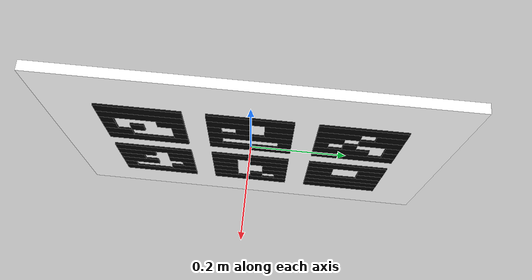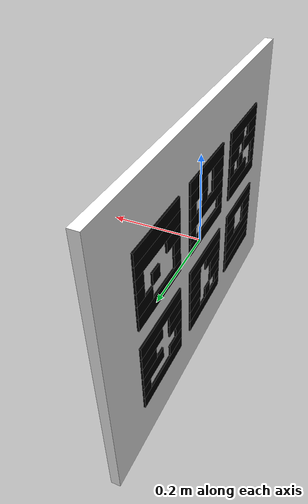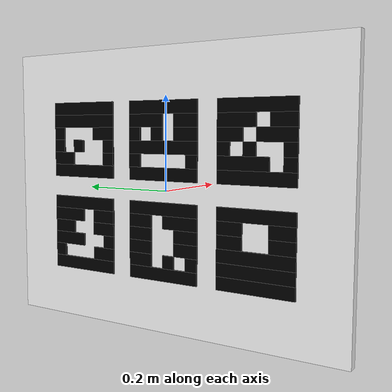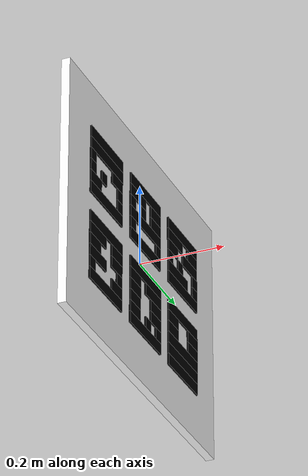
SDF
<?xml version="1.0"?>
<sdf version="1.8">
  <model name="aruco_station_R3_ids_12_17">
    <static>true</static>
    <link name="target_link">

      <visual name="white_board_base">
        <cast_shadows>false</cast_shadows>
        <pose>0.00000000 0.00000000 0.00000000 0.00000000 0.00000000 0.00000000</pose>
        <geometry>
          <box>
            <size>0.02000000 0.80000000 0.60000000</size>
          </box>
        </geometry>
        <material>
          <ambient>1 1 1 1</ambient>
          <diffuse>1 1 1 1</diffuse>
          <specular>0 0 0 1</specular>
          <emissive>1 1 1 1</emissive>
        </material>
      </visual>

      <visual name="black_cell_front_plus_x_id12_r0_c0_6">
        <cast_shadows>false</cast_shadows>
        <pose>0.01300000 -0.21111111 0.17500000 0.00000000 0.00000000 0.00000000</pose>
        <geometry>
          <box>
            <size>0.00400000 0.16666667 0.02777778</size>
          </box>
        </geometry>
        <material>
          <ambient>0 0 0 1</ambient>
          <diffuse>0 0 0 1</diffuse>
          <specular>0 0 0 1</specular>
          <emissive>0 0 0 1</emissive>
        </material>
      </visual>

      <visual name="black_cell_front_plus_x_id12_r1_c0_6">
        <cast_shadows>false</cast_shadows>
        <pose>0.01300000 -0.21111111 0.14722222 0.00000000 0.00000000 0.00000000</pose>
        <geometry>
          <box>
            <size>0.00400000 0.16666667 0.02777778</size>
          </box>
        </geometry>
        <material>
          <ambient>0 0 0 1</ambient>
          <diffuse>0 0 0 1</diffuse>
          <specular>0 0 0 1</specular>
          <emissive>0 0 0 1</emissive>
        </material>
      </visual>

      <visual name="black_cell_front_plus_x_id12_r2_c0_1">
        <cast_shadows>false</cast_shadows>
        <pose>0.01300000 -0.28055556 0.11944444 0.00000000 0.00000000 0.00000000</pose>
        <geometry>
          <box>
            <size>0.00400000 0.02777778 0.02777778</size>
          </box>
        </geometry>
        <material>
          <ambient>0 0 0 1</ambient>
          <diffuse>0 0 0 1</diffuse>
          <specular>0 0 0 1</specular>
          <emissive>0 0 0 1</emissive>
        </material>
      </visual>

      <visual name="black_cell_front_plus_x_id12_r2_c4_6">
        <cast_shadows>false</cast_shadows>
        <pose>0.01300000 -0.15555556 0.11944444 0.00000000 0.00000000 0.00000000</pose>
        <geometry>
          <box>
            <size>0.00400000 0.05555556 0.02777778</size>
          </box>
        </geometry>
        <material>
          <ambient>0 0 0 1</ambient>
          <diffuse>0 0 0 1</diffuse>
          <specular>0 0 0 1</specular>
          <emissive>0 0 0 1</emissive>
        </material>
      </visual>

      <visual name="black_cell_front_plus_x_id12_r3_c0_1">
        <cast_shadows>false</cast_shadows>
        <pose>0.01300000 -0.28055556 0.09166667 0.00000000 0.00000000 0.00000000</pose>
        <geometry>
          <box>
            <size>0.00400000 0.02777778 0.02777778</size>
          </box>
        </geometry>
        <material>
          <ambient>0 0 0 1</ambient>
          <diffuse>0 0 0 1</diffuse>
          <specular>0 0 0 1</specular>
          <emissive>0 0 0 1</emissive>
        </material>
      </visual>

      <visual name="black_cell_front_plus_x_id12_r3_c2_3">
        <cast_shadows>false</cast_shadows>
        <pose>0.01300000 -0.22500000 0.09166667 0.00000000 0.00000000 0.00000000</pose>
        <geometry>
          <box>
            <size>0.00400000 0.02777778 0.02777778</size>
          </box>
        </geometry>
        <material>
          <ambient>0 0 0 1</ambient>
          <diffuse>0 0 0 1</diffuse>
          <specular>0 0 0 1</specular>
          <emissive>0 0 0 1</emissive>
        </material>
      </visual>

      <visual name="black_cell_front_plus_x_id12_r3_c5_6">
        <cast_shadows>false</cast_shadows>
        <pose>0.01300000 -0.14166667 0.09166667 0.00000000 0.00000000 0.00000000</pose>
        <geometry>
          <box>
            <size>0.00400000 0.02777778 0.02777778</size>
          </box>
        </geometry>
        <material>
          <ambient>0 0 0 1</ambient>
          <diffuse>0 0 0 1</diffuse>
          <specular>0 0 0 1</specular>
          <emissive>0 0 0 1</emissive>
        </material>
      </visual>

      <visual name="black_cell_front_plus_x_id12_r4_c0_2">
        <cast_shadows>false</cast_shadows>
        <pose>0.01300000 -0.26666667 0.06388889 0.00000000 0.00000000 0.00000000</pose>
        <geometry>
          <box>
            <size>0.00400000 0.05555556 0.02777778</size>
          </box>
        </geometry>
        <material>
          <ambient>0 0 0 1</ambient>
          <diffuse>0 0 0 1</diffuse>
          <specular>0 0 0 1</specular>
          <emissive>0 0 0 1</emissive>
        </material>
      </visual>

      <visual name="black_cell_front_plus_x_id12_r4_c5_6">
        <cast_shadows>false</cast_shadows>
        <pose>0.01300000 -0.14166667 0.06388889 0.00000000 0.00000000 0.00000000</pose>
        <geometry>
          <box>
            <size>0.00400000 0.02777778 0.02777778</size>
          </box>
        </geometry>
        <material>
          <ambient>0 0 0 1</ambient>
          <diffuse>0 0 0 1</diffuse>
          <specular>0 0 0 1</specular>
          <emissive>0 0 0 1</emissive>
        </material>
      </visual>

      <visual name="black_cell_front_plus_x_id12_r5_c0_6">
        <cast_shadows>false</cast_shadows>
        <pose>0.01300000 -0.21111111 0.03611111 0.00000000 0.00000000 0.00000000</pose>
        <geometry>
          <box>
            <size>0.00400000 0.16666667 0.02777778</size>
          </box>
        </geometry>
        <material>
          <ambient>0 0 0 1</ambient>
          <diffuse>0 0 0 1</diffuse>
          <specular>0 0 0 1</specular>
          <emissive>0 0 0 1</emissive>
        </material>
      </visual>

      <visual name="black_cell_back_minus_x_id12_r0_c0_6">
        <cast_shadows>false</cast_shadows>
        <pose>-0.01300000 0.21111111 0.17500000 0.00000000 0.00000000 0.00000000</pose>
        <geometry>
          <box>
            <size>0.00400000 0.16666667 0.02777778</size>
          </box>
        </geometry>
        <material>
          <ambient>0 0 0 1</ambient>
          <diffuse>0 0 0 1</diffuse>
          <specular>0 0 0 1</specular>
          <emissive>0 0 0 1</emissive>
        </material>
      </visual>

      <visual name="black_cell_back_minus_x_id12_r1_c0_6">
        <cast_shadows>false</cast_shadows>
        <pose>-0.01300000 0.21111111 0.14722222 0.00000000 0.00000000 0.00000000</pose>
        <geometry>
          <box>
            <size>0.00400000 0.16666667 0.02777778</size>
          </box>
        </geometry>
        <material>
          <ambient>0 0 0 1</ambient>
          <diffuse>0 0 0 1</diffuse>
          <specular>0 0 0 1</specular>
          <emissive>0 0 0 1</emissive>
        </material>
      </visual>

      <visual name="black_cell_back_minus_x_id12_r2_c0_1">
        <cast_shadows>false</cast_shadows>
        <pose>-0.01300000 0.28055556 0.11944444 0.00000000 0.00000000 0.00000000</pose>
        <geometry>
          <box>
            <size>0.00400000 0.02777778 0.02777778</size>
          </box>
        </geometry>
        <material>
          <ambient>0 0 0 1</ambient>
          <diffuse>0 0 0 1</diffuse>
          <specular>0 0 0 1</specular>
          <emissive>0 0 0 1</emissive>
        </material>
      </visual>

      <visual name="black_cell_back_minus_x_id12_r2_c4_6">
        <cast_shadows>false</cast_shadows>
        <pose>-0.01300000 0.15555556 0.11944444 0.00000000 0.00000000 0.00000000</pose>
        <geometry>
          <box>
            <size>0.00400000 0.05555556 0.02777778</size>
          </box>
        </geometry>
        <material>
          <ambient>0 0 0 1</ambient>
          <diffuse>0 0 0 1</diffuse>
          <specular>0 0 0 1</specular>
          <emissive>0 0 0 1</emissive>
        </material>
      </visual>

      <visual name="black_cell_back_minus_x_id12_r3_c0_1">
        <cast_shadows>false</cast_shadows>
        <pose>-0.01300000 0.28055556 0.09166667 0.00000000 0.00000000 0.00000000</pose>
        <geometry>
          <box>
            <size>0.00400000 0.02777778 0.02777778</size>
          </box>
        </geometry>
        <material>
          <ambient>0 0 0 1</ambient>
          <diffuse>0 0 0 1</diffuse>
          <specular>0 0 0 1</specular>
          <emissive>0 0 0 1</emissive>
        </material>
      </visual>

      <visual name="black_cell_back_minus_x_id12_r3_c2_3">
        <cast_shadows>false</cast_shadows>
        <pose>-0.01300000 0.22500000 0.09166667 0.00000000 0.00000000 0.00000000</pose>
        <geometry>
          <box>
            <size>0.00400000 0.02777778 0.02777778</size>
          </box>
        </geometry>
        <material>
          <ambient>0 0 0 1</ambient>
          <diffuse>0 0 0 1</diffuse>
          <specular>0 0 0 1</specular>
          <emissive>0 0 0 1</emissive>
        </material>
      </visual>

      <visual name="black_cell_back_minus_x_id12_r3_c5_6">
        <cast_shadows>false</cast_shadows>
        <pose>-0.01300000 0.14166667 0.09166667 0.00000000 0.00000000 0.00000000</pose>
        <geometry>
          <box>
            <size>0.00400000 0.02777778 0.02777778</size>
          </box>
        </geometry>
        <material>
          <ambient>0 0 0 1</ambient>
          <diffuse>0 0 0 1</diffuse>
          <specular>0 0 0 1</specular>
          <emissive>0 0 0 1</emissive>
        </material>
      </visual>

      <visual name="black_cell_back_minus_x_id12_r4_c0_2">
        <cast_shadows>false</cast_shadows>
        <pose>-0.01300000 0.26666667 0.06388889 0.00000000 0.00000000 0.00000000</pose>
        <geometry>
          <box>
            <size>0.00400000 0.05555556 0.02777778</size>
          </box>
        </geometry>
        <material>
          <ambient>0 0 0 1</ambient>
          <diffuse>0 0 0 1</diffuse>
          <specular>0 0 0 1</specular>
          <emissive>0 0 0 1</emissive>
        </material>
      </visual>

      <visual name="black_cell_back_minus_x_id12_r4_c5_6">
        <cast_shadows>false</cast_shadows>
        <pose>-0.01300000 0.14166667 0.06388889 0.00000000 0.00000000 0.00000000</pose>
        <geometry>
          <box>
            <size>0.00400000 0.02777778 0.02777778</size>
          </box>
        </geometry>
        <material>
          <ambient>0 0 0 1</ambient>
          <diffuse>0 0 0 1</diffuse>
          <specular>0 0 0 1</specular>
          <emissive>0 0 0 1</emissive>
        </material>
      </visual>

      <visual name="black_cell_back_minus_x_id12_r5_c0_6">
        <cast_shadows>false</cast_shadows>
        <pose>-0.01300000 0.21111111 0.03611111 0.00000000 0.00000000 0.00000000</pose>
        <geometry>
          <box>
            <size>0.00400000 0.16666667 0.02777778</size>
          </box>
        </geometry>
        <material>
          <ambient>0 0 0 1</ambient>
          <diffuse>0 0 0 1</diffuse>
          <specular>0 0 0 1</specular>
          <emissive>0 0 0 1</emissive>
        </material>
      </visual>

      <visual name="black_cell_front_plus_x_id13_r0_c0_6">
        <cast_shadows>false</cast_shadows>
        <pose>0.01300000 -0.00000000 0.17500000 0.00000000 0.00000000 0.00000000</pose>
        <geometry>
          <box>
            <size>0.00400000 0.16666667 0.02777778</size>
          </box>
        </geometry>
        <material>
          <ambient>0 0 0 1</ambient>
          <diffuse>0 0 0 1</diffuse>
          <specular>0 0 0 1</specular>
          <emissive>0 0 0 1</emissive>
        </material>
      </visual>

      <visual name="black_cell_front_plus_x_id13_r1_c0_3">
        <cast_shadows>false</cast_shadows>
        <pose>0.01300000 -0.04166667 0.14722222 0.00000000 0.00000000 0.00000000</pose>
        <geometry>
          <box>
            <size>0.00400000 0.08333333 0.02777778</size>
          </box>
        </geometry>
        <material>
          <ambient>0 0 0 1</ambient>
          <diffuse>0 0 0 1</diffuse>
          <specular>0 0 0 1</specular>
          <emissive>0 0 0 1</emissive>
        </material>
      </visual>

      <visual name="black_cell_front_plus_x_id13_r1_c4_6">
        <cast_shadows>false</cast_shadows>
        <pose>0.01300000 0.05555556 0.14722222 0.00000000 0.00000000 0.00000000</pose>
        <geometry>
          <box>
            <size>0.00400000 0.05555556 0.02777778</size>
          </box>
        </geometry>
        <material>
          <ambient>0 0 0 1</ambient>
          <diffuse>0 0 0 1</diffuse>
          <specular>0 0 0 1</specular>
          <emissive>0 0 0 1</emissive>
        </material>
      </visual>

      <visual name="black_cell_front_plus_x_id13_r2_c0_1">
        <cast_shadows>false</cast_shadows>
        <pose>0.01300000 -0.06944444 0.11944444 0.00000000 0.00000000 0.00000000</pose>
        <geometry>
          <box>
            <size>0.00400000 0.02777778 0.02777778</size>
          </box>
        </geometry>
        <material>
          <ambient>0 0 0 1</ambient>
          <diffuse>0 0 0 1</diffuse>
          <specular>0 0 0 1</specular>
          <emissive>0 0 0 1</emissive>
        </material>
      </visual>

      <visual name="black_cell_front_plus_x_id13_r2_c2_3">
        <cast_shadows>false</cast_shadows>
        <pose>0.01300000 -0.01388889 0.11944444 0.00000000 0.00000000 0.00000000</pose>
        <geometry>
          <box>
            <size>0.00400000 0.02777778 0.02777778</size>
          </box>
        </geometry>
        <material>
          <ambient>0 0 0 1</ambient>
          <diffuse>0 0 0 1</diffuse>
          <specular>0 0 0 1</specular>
          <emissive>0 0 0 1</emissive>
        </material>
      </visual>

      <visual name="black_cell_front_plus_x_id13_r2_c4_6">
        <cast_shadows>false</cast_shadows>
        <pose>0.01300000 0.05555556 0.11944444 0.00000000 0.00000000 0.00000000</pose>
        <geometry>
          <box>
            <size>0.00400000 0.05555556 0.02777778</size>
          </box>
        </geometry>
        <material>
          <ambient>0 0 0 1</ambient>
          <diffuse>0 0 0 1</diffuse>
          <specular>0 0 0 1</specular>
          <emissive>0 0 0 1</emissive>
        </material>
      </visual>

      <visual name="black_cell_front_plus_x_id13_r3_c0_6">
        <cast_shadows>false</cast_shadows>
        <pose>0.01300000 -0.00000000 0.09166667 0.00000000 0.00000000 0.00000000</pose>
        <geometry>
          <box>
            <size>0.00400000 0.16666667 0.02777778</size>
          </box>
        </geometry>
        <material>
          <ambient>0 0 0 1</ambient>
          <diffuse>0 0 0 1</diffuse>
          <specular>0 0 0 1</specular>
          <emissive>0 0 0 1</emissive>
        </material>
      </visual>

      <visual name="black_cell_front_plus_x_id13_r4_c0_1">
        <cast_shadows>false</cast_shadows>
        <pose>0.01300000 -0.06944444 0.06388889 0.00000000 0.00000000 0.00000000</pose>
        <geometry>
          <box>
            <size>0.00400000 0.02777778 0.02777778</size>
          </box>
        </geometry>
        <material>
          <ambient>0 0 0 1</ambient>
          <diffuse>0 0 0 1</diffuse>
          <specular>0 0 0 1</specular>
          <emissive>0 0 0 1</emissive>
        </material>
      </visual>

      <visual name="black_cell_front_plus_x_id13_r4_c5_6">
        <cast_shadows>false</cast_shadows>
        <pose>0.01300000 0.06944444 0.06388889 0.00000000 0.00000000 0.00000000</pose>
        <geometry>
          <box>
            <size>0.00400000 0.02777778 0.02777778</size>
          </box>
        </geometry>
        <material>
          <ambient>0 0 0 1</ambient>
          <diffuse>0 0 0 1</diffuse>
          <specular>0 0 0 1</specular>
          <emissive>0 0 0 1</emissive>
        </material>
      </visual>

      <visual name="black_cell_front_plus_x_id13_r5_c0_6">
        <cast_shadows>false</cast_shadows>
        <pose>0.01300000 -0.00000000 0.03611111 0.00000000 0.00000000 0.00000000</pose>
        <geometry>
          <box>
            <size>0.00400000 0.16666667 0.02777778</size>
          </box>
        </geometry>
        <material>
          <ambient>0 0 0 1</ambient>
          <diffuse>0 0 0 1</diffuse>
          <specular>0 0 0 1</specular>
          <emissive>0 0 0 1</emissive>
        </material>
      </visual>

      <visual name="black_cell_back_minus_x_id13_r0_c0_6">
        <cast_shadows>false</cast_shadows>
        <pose>-0.01300000 0.00000000 0.17500000 0.00000000 0.00000000 0.00000000</pose>
        <geometry>
          <box>
            <size>0.00400000 0.16666667 0.02777778</size>
          </box>
        </geometry>
        <material>
          <ambient>0 0 0 1</ambient>
          <diffuse>0 0 0 1</diffuse>
          <specular>0 0 0 1</specular>
          <emissive>0 0 0 1</emissive>
        </material>
      </visual>

      <visual name="black_cell_back_minus_x_id13_r1_c0_3">
        <cast_shadows>false</cast_shadows>
        <pose>-0.01300000 0.04166667 0.14722222 0.00000000 0.00000000 0.00000000</pose>
        <geometry>
          <box>
            <size>0.00400000 0.08333333 0.02777778</size>
          </box>
        </geometry>
        <material>
          <ambient>0 0 0 1</ambient>
          <diffuse>0 0 0 1</diffuse>
          <specular>0 0 0 1</specular>
          <emissive>0 0 0 1</emissive>
        </material>
      </visual>

      <visual name="black_cell_back_minus_x_id13_r1_c4_6">
        <cast_shadows>false</cast_shadows>
        <pose>-0.01300000 -0.05555556 0.14722222 0.00000000 0.00000000 0.00000000</pose>
        <geometry>
          <box>
            <size>0.00400000 0.05555556 0.02777778</size>
          </box>
        </geometry>
        <material>
          <ambient>0 0 0 1</ambient>
          <diffuse>0 0 0 1</diffuse>
          <specular>0 0 0 1</specular>
          <emissive>0 0 0 1</emissive>
        </material>
      </visual>

      <visual name="black_cell_back_minus_x_id13_r2_c0_1">
        <cast_shadows>false</cast_shadows>
        <pose>-0.01300000 0.06944444 0.11944444 0.00000000 0.00000000 0.00000000</pose>
        <geometry>
          <box>
            <size>0.00400000 0.02777778 0.02777778</size>
          </box>
        </geometry>
        <material>
          <ambient>0 0 0 1</ambient>
          <diffuse>0 0 0 1</diffuse>
          <specular>0 0 0 1</specular>
          <emissive>0 0 0 1</emissive>
        </material>
      </visual>

      <visual name="black_cell_back_minus_x_id13_r2_c2_3">
        <cast_shadows>false</cast_shadows>
        <pose>-0.01300000 0.01388889 0.11944444 0.00000000 0.00000000 0.00000000</pose>
        <geometry>
          <box>
            <size>0.00400000 0.02777778 0.02777778</size>
          </box>
        </geometry>
        <material>
          <ambient>0 0 0 1</ambient>
          <diffuse>0 0 0 1</diffuse>
          <specular>0 0 0 1</specular>
          <emissive>0 0 0 1</emissive>
        </material>
      </visual>

      <visual name="black_cell_back_minus_x_id13_r2_c4_6">
        <cast_shadows>false</cast_shadows>
        <pose>-0.01300000 -0.05555556 0.11944444 0.00000000 0.00000000 0.00000000</pose>
        <geometry>
          <box>
            <size>0.00400000 0.05555556 0.02777778</size>
          </box>
        </geometry>
        <material>
          <ambient>0 0 0 1</ambient>
          <diffuse>0 0 0 1</diffuse>
          <specular>0 0 0 1</specular>
          <emissive>0 0 0 1</emissive>
        </material>
      </visual>

      <visual name="black_cell_back_minus_x_id13_r3_c0_6">
        <cast_shadows>false</cast_shadows>
        <pose>-0.01300000 0.00000000 0.09166667 0.00000000 0.00000000 0.00000000</pose>
        <geometry>
          <box>
            <size>0.00400000 0.16666667 0.02777778</size>
          </box>
        </geometry>
        <material>
          <ambient>0 0 0 1</ambient>
          <diffuse>0 0 0 1</diffuse>
          <specular>0 0 0 1</specular>
          <emissive>0 0 0 1</emissive>
        </material>
      </visual>

      <visual name="black_cell_back_minus_x_id13_r4_c0_1">
        <cast_shadows>false</cast_shadows>
        <pose>-0.01300000 0.06944444 0.06388889 0.00000000 0.00000000 0.00000000</pose>
        <geometry>
          <box>
            <size>0.00400000 0.02777778 0.02777778</size>
          </box>
        </geometry>
        <material>
          <ambient>0 0 0 1</ambient>
          <diffuse>0 0 0 1</diffuse>
          <specular>0 0 0 1</specular>
          <emissive>0 0 0 1</emissive>
        </material>
      </visual>

      <visual name="black_cell_back_minus_x_id13_r4_c5_6">
        <cast_shadows>false</cast_shadows>
        <pose>-0.01300000 -0.06944444 0.06388889 0.00000000 0.00000000 0.00000000</pose>
        <geometry>
          <box>
            <size>0.00400000 0.02777778 0.02777778</size>
          </box>
        </geometry>
        <material>
          <ambient>0 0 0 1</ambient>
          <diffuse>0 0 0 1</diffuse>
          <specular>0 0 0 1</specular>
          <emissive>0 0 0 1</emissive>
        </material>
      </visual>

      <visual name="black_cell_back_minus_x_id13_r5_c0_6">
        <cast_shadows>false</cast_shadows>
        <pose>-0.01300000 0.00000000 0.03611111 0.00000000 0.00000000 0.00000000</pose>
        <geometry>
          <box>
            <size>0.00400000 0.16666667 0.02777778</size>
          </box>
        </geometry>
        <material>
          <ambient>0 0 0 1</ambient>
          <diffuse>0 0 0 1</diffuse>
          <specular>0 0 0 1</specular>
          <emissive>0 0 0 1</emissive>
        </material>
      </visual>

      <visual name="black_cell_front_plus_x_id14_r0_c0_6">
        <cast_shadows>false</cast_shadows>
        <pose>0.01300000 0.21111111 0.17500000 0.00000000 0.00000000 0.00000000</pose>
        <geometry>
          <box>
            <size>0.00400000 0.16666667 0.02777778</size>
          </box>
        </geometry>
        <material>
          <ambient>0 0 0 1</ambient>
          <diffuse>0 0 0 1</diffuse>
          <specular>0 0 0 1</specular>
          <emissive>0 0 0 1</emissive>
        </material>
      </visual>

      <visual name="black_cell_front_plus_x_id14_r1_c0_3">
        <cast_shadows>false</cast_shadows>
        <pose>0.01300000 0.16944444 0.14722222 0.00000000 0.00000000 0.00000000</pose>
        <geometry>
          <box>
            <size>0.00400000 0.08333333 0.02777778</size>
          </box>
        </geometry>
        <material>
          <ambient>0 0 0 1</ambient>
          <diffuse>0 0 0 1</diffuse>
          <specular>0 0 0 1</specular>
          <emissive>0 0 0 1</emissive>
        </material>
      </visual>

      <visual name="black_cell_front_plus_x_id14_r1_c4_6">
        <cast_shadows>false</cast_shadows>
        <pose>0.01300000 0.26666667 0.14722222 0.00000000 0.00000000 0.00000000</pose>
        <geometry>
          <box>
            <size>0.00400000 0.05555556 0.02777778</size>
          </box>
        </geometry>
        <material>
          <ambient>0 0 0 1</ambient>
          <diffuse>0 0 0 1</diffuse>
          <specular>0 0 0 1</specular>
          <emissive>0 0 0 1</emissive>
        </material>
      </visual>

      <visual name="black_cell_front_plus_x_id14_r2_c0_2">
        <cast_shadows>false</cast_shadows>
        <pose>0.01300000 0.15555556 0.11944444 0.00000000 0.00000000 0.00000000</pose>
        <geometry>
          <box>
            <size>0.00400000 0.05555556 0.02777778</size>
          </box>
        </geometry>
        <material>
          <ambient>0 0 0 1</ambient>
          <diffuse>0 0 0 1</diffuse>
          <specular>0 0 0 1</specular>
          <emissive>0 0 0 1</emissive>
        </material>
      </visual>

      <visual name="black_cell_front_plus_x_id14_r2_c3_6">
        <cast_shadows>false</cast_shadows>
        <pose>0.01300000 0.25277778 0.11944444 0.00000000 0.00000000 0.00000000</pose>
        <geometry>
          <box>
            <size>0.00400000 0.08333333 0.02777778</size>
          </box>
        </geometry>
        <material>
          <ambient>0 0 0 1</ambient>
          <diffuse>0 0 0 1</diffuse>
          <specular>0 0 0 1</specular>
          <emissive>0 0 0 1</emissive>
        </material>
      </visual>

      <visual name="black_cell_front_plus_x_id14_r3_c0_1">
        <cast_shadows>false</cast_shadows>
        <pose>0.01300000 0.14166667 0.09166667 0.00000000 0.00000000 0.00000000</pose>
        <geometry>
          <box>
            <size>0.00400000 0.02777778 0.02777778</size>
          </box>
        </geometry>
        <material>
          <ambient>0 0 0 1</ambient>
          <diffuse>0 0 0 1</diffuse>
          <specular>0 0 0 1</specular>
          <emissive>0 0 0 1</emissive>
        </material>
      </visual>

      <visual name="black_cell_front_plus_x_id14_r3_c2_3">
        <cast_shadows>false</cast_shadows>
        <pose>0.01300000 0.19722222 0.09166667 0.00000000 0.00000000 0.00000000</pose>
        <geometry>
          <box>
            <size>0.00400000 0.02777778 0.02777778</size>
          </box>
        </geometry>
        <material>
          <ambient>0 0 0 1</ambient>
          <diffuse>0 0 0 1</diffuse>
          <specular>0 0 0 1</specular>
          <emissive>0 0 0 1</emissive>
        </material>
      </visual>

      <visual name="black_cell_front_plus_x_id14_r3_c5_6">
        <cast_shadows>false</cast_shadows>
        <pose>0.01300000 0.28055556 0.09166667 0.00000000 0.00000000 0.00000000</pose>
        <geometry>
          <box>
            <size>0.00400000 0.02777778 0.02777778</size>
          </box>
        </geometry>
        <material>
          <ambient>0 0 0 1</ambient>
          <diffuse>0 0 0 1</diffuse>
          <specular>0 0 0 1</specular>
          <emissive>0 0 0 1</emissive>
        </material>
      </visual>

      <visual name="black_cell_front_plus_x_id14_r4_c0_4">
        <cast_shadows>false</cast_shadows>
        <pose>0.01300000 0.18333333 0.06388889 0.00000000 0.00000000 0.00000000</pose>
        <geometry>
          <box>
            <size>0.00400000 0.11111111 0.02777778</size>
          </box>
        </geometry>
        <material>
          <ambient>0 0 0 1</ambient>
          <diffuse>0 0 0 1</diffuse>
          <specular>0 0 0 1</specular>
          <emissive>0 0 0 1</emissive>
        </material>
      </visual>

      <visual name="black_cell_front_plus_x_id14_r4_c5_6">
        <cast_shadows>false</cast_shadows>
        <pose>0.01300000 0.28055556 0.06388889 0.00000000 0.00000000 0.00000000</pose>
        <geometry>
          <box>
            <size>0.00400000 0.02777778 0.02777778</size>
          </box>
        </geometry>
        <material>
          <ambient>0 0 0 1</ambient>
          <diffuse>0 0 0 1</diffuse>
          <specular>0 0 0 1</specular>
          <emissive>0 0 0 1</emissive>
        </material>
      </visual>

      <visual name="black_cell_front_plus_x_id14_r5_c0_6">
        <cast_shadows>false</cast_shadows>
        <pose>0.01300000 0.21111111 0.03611111 0.00000000 0.00000000 0.00000000</pose>
        <geometry>
          <box>
            <size>0.00400000 0.16666667 0.02777778</size>
          </box>
        </geometry>
        <material>
          <ambient>0 0 0 1</ambient>
          <diffuse>0 0 0 1</diffuse>
          <specular>0 0 0 1</specular>
          <emissive>0 0 0 1</emissive>
        </material>
      </visual>

      <visual name="black_cell_back_minus_x_id14_r0_c0_6">
        <cast_shadows>false</cast_shadows>
        <pose>-0.01300000 -0.21111111 0.17500000 0.00000000 0.00000000 0.00000000</pose>
        <geometry>
          <box>
            <size>0.00400000 0.16666667 0.02777778</size>
          </box>
        </geometry>
        <material>
          <ambient>0 0 0 1</ambient>
          <diffuse>0 0 0 1</diffuse>
          <specular>0 0 0 1</specular>
          <emissive>0 0 0 1</emissive>
        </material>
      </visual>

      <visual name="black_cell_back_minus_x_id14_r1_c0_3">
        <cast_shadows>false</cast_shadows>
        <pose>-0.01300000 -0.16944444 0.14722222 0.00000000 0.00000000 0.00000000</pose>
        <geometry>
          <box>
            <size>0.00400000 0.08333333 0.02777778</size>
          </box>
        </geometry>
        <material>
          <ambient>0 0 0 1</ambient>
          <diffuse>0 0 0 1</diffuse>
          <specular>0 0 0 1</specular>
          <emissive>0 0 0 1</emissive>
        </material>
      </visual>

      <visual name="black_cell_back_minus_x_id14_r1_c4_6">
        <cast_shadows>false</cast_shadows>
        <pose>-0.01300000 -0.26666667 0.14722222 0.00000000 0.00000000 0.00000000</pose>
        <geometry>
          <box>
            <size>0.00400000 0.05555556 0.02777778</size>
          </box>
        </geometry>
        <material>
          <ambient>0 0 0 1</ambient>
          <diffuse>0 0 0 1</diffuse>
          <specular>0 0 0 1</specular>
          <emissive>0 0 0 1</emissive>
        </material>
      </visual>

      <visual name="black_cell_back_minus_x_id14_r2_c0_2">
        <cast_shadows>false</cast_shadows>
        <pose>-0.01300000 -0.15555556 0.11944444 0.00000000 0.00000000 0.00000000</pose>
        <geometry>
          <box>
            <size>0.00400000 0.05555556 0.02777778</size>
          </box>
        </geometry>
        <material>
          <ambient>0 0 0 1</ambient>
          <diffuse>0 0 0 1</diffuse>
          <specular>0 0 0 1</specular>
          <emissive>0 0 0 1</emissive>
        </material>
      </visual>

      <visual name="black_cell_back_minus_x_id14_r2_c3_6">
        <cast_shadows>false</cast_shadows>
        <pose>-0.01300000 -0.25277778 0.11944444 0.00000000 0.00000000 0.00000000</pose>
        <geometry>
          <box>
            <size>0.00400000 0.08333333 0.02777778</size>
          </box>
        </geometry>
        <material>
          <ambient>0 0 0 1</ambient>
          <diffuse>0 0 0 1</diffuse>
          <specular>0 0 0 1</specular>
          <emissive>0 0 0 1</emissive>
        </material>
      </visual>

      <visual name="black_cell_back_minus_x_id14_r3_c0_1">
        <cast_shadows>false</cast_shadows>
        <pose>-0.01300000 -0.14166667 0.09166667 0.00000000 0.00000000 0.00000000</pose>
        <geometry>
          <box>
            <size>0.00400000 0.02777778 0.02777778</size>
          </box>
        </geometry>
        <material>
          <ambient>0 0 0 1</ambient>
          <diffuse>0 0 0 1</diffuse>
          <specular>0 0 0 1</specular>
          <emissive>0 0 0 1</emissive>
        </material>
      </visual>

      <visual name="black_cell_back_minus_x_id14_r3_c2_3">
        <cast_shadows>false</cast_shadows>
        <pose>-0.01300000 -0.19722222 0.09166667 0.00000000 0.00000000 0.00000000</pose>
        <geometry>
          <box>
            <size>0.00400000 0.02777778 0.02777778</size>
          </box>
        </geometry>
        <material>
          <ambient>0 0 0 1</ambient>
          <diffuse>0 0 0 1</diffuse>
          <specular>0 0 0 1</specular>
          <emissive>0 0 0 1</emissive>
        </material>
      </visual>

      <visual name="black_cell_back_minus_x_id14_r3_c5_6">
        <cast_shadows>false</cast_shadows>
        <pose>-0.01300000 -0.28055556 0.09166667 0.00000000 0.00000000 0.00000000</pose>
        <geometry>
          <box>
            <size>0.00400000 0.02777778 0.02777778</size>
          </box>
        </geometry>
        <material>
          <ambient>0 0 0 1</ambient>
          <diffuse>0 0 0 1</diffuse>
          <specular>0 0 0 1</specular>
          <emissive>0 0 0 1</emissive>
        </material>
      </visual>

      <visual name="black_cell_back_minus_x_id14_r4_c0_4">
        <cast_shadows>false</cast_shadows>
        <pose>-0.01300000 -0.18333333 0.06388889 0.00000000 0.00000000 0.00000000</pose>
        <geometry>
          <box>
            <size>0.00400000 0.11111111 0.02777778</size>
          </box>
        </geometry>
        <material>
          <ambient>0 0 0 1</ambient>
          <diffuse>0 0 0 1</diffuse>
          <specular>0 0 0 1</specular>
          <emissive>0 0 0 1</emissive>
        </material>
      </visual>

      <visual name="black_cell_back_minus_x_id14_r4_c5_6">
        <cast_shadows>false</cast_shadows>
        <pose>-0.01300000 -0.28055556 0.06388889 0.00000000 0.00000000 0.00000000</pose>
        <geometry>
          <box>
            <size>0.00400000 0.02777778 0.02777778</size>
          </box>
        </geometry>
        <material>
          <ambient>0 0 0 1</ambient>
          <diffuse>0 0 0 1</diffuse>
          <specular>0 0 0 1</specular>
          <emissive>0 0 0 1</emissive>
        </material>
      </visual>

      <visual name="black_cell_back_minus_x_id14_r5_c0_6">
        <cast_shadows>false</cast_shadows>
        <pose>-0.01300000 -0.21111111 0.03611111 0.00000000 0.00000000 0.00000000</pose>
        <geometry>
          <box>
            <size>0.00400000 0.16666667 0.02777778</size>
          </box>
        </geometry>
        <material>
          <ambient>0 0 0 1</ambient>
          <diffuse>0 0 0 1</diffuse>
          <specular>0 0 0 1</specular>
          <emissive>0 0 0 1</emissive>
        </material>
      </visual>

      <visual name="black_cell_front_plus_x_id15_r0_c0_6">
        <cast_shadows>false</cast_shadows>
        <pose>0.01300000 -0.21111111 -0.03611111 0.00000000 0.00000000 0.00000000</pose>
        <geometry>
          <box>
            <size>0.00400000 0.16666667 0.02777778</size>
          </box>
        </geometry>
        <material>
          <ambient>0 0 0 1</ambient>
          <diffuse>0 0 0 1</diffuse>
          <specular>0 0 0 1</specular>
          <emissive>0 0 0 1</emissive>
        </material>
      </visual>

      <visual name="black_cell_front_plus_x_id15_r1_c0_3">
        <cast_shadows>false</cast_shadows>
        <pose>0.01300000 -0.25277778 -0.06388889 0.00000000 0.00000000 0.00000000</pose>
        <geometry>
          <box>
            <size>0.00400000 0.08333333 0.02777778</size>
          </box>
        </geometry>
        <material>
          <ambient>0 0 0 1</ambient>
          <diffuse>0 0 0 1</diffuse>
          <specular>0 0 0 1</specular>
          <emissive>0 0 0 1</emissive>
        </material>
      </visual>

      <visual name="black_cell_front_plus_x_id15_r1_c4_6">
        <cast_shadows>false</cast_shadows>
        <pose>0.01300000 -0.15555556 -0.06388889 0.00000000 0.00000000 0.00000000</pose>
        <geometry>
          <box>
            <size>0.00400000 0.05555556 0.02777778</size>
          </box>
        </geometry>
        <material>
          <ambient>0 0 0 1</ambient>
          <diffuse>0 0 0 1</diffuse>
          <specular>0 0 0 1</specular>
          <emissive>0 0 0 1</emissive>
        </material>
      </visual>

      <visual name="black_cell_front_plus_x_id15_r2_c0_2">
        <cast_shadows>false</cast_shadows>
        <pose>0.01300000 -0.26666667 -0.09166667 0.00000000 0.00000000 0.00000000</pose>
        <geometry>
          <box>
            <size>0.00400000 0.05555556 0.02777778</size>
          </box>
        </geometry>
        <material>
          <ambient>0 0 0 1</ambient>
          <diffuse>0 0 0 1</diffuse>
          <specular>0 0 0 1</specular>
          <emissive>0 0 0 1</emissive>
        </material>
      </visual>

      <visual name="black_cell_front_plus_x_id15_r2_c4_6">
        <cast_shadows>false</cast_shadows>
        <pose>0.01300000 -0.15555556 -0.09166667 0.00000000 0.00000000 0.00000000</pose>
        <geometry>
          <box>
            <size>0.00400000 0.05555556 0.02777778</size>
          </box>
        </geometry>
        <material>
          <ambient>0 0 0 1</ambient>
          <diffuse>0 0 0 1</diffuse>
          <specular>0 0 0 1</specular>
          <emissive>0 0 0 1</emissive>
        </material>
      </visual>

      <visual name="black_cell_front_plus_x_id15_r3_c0_3">
        <cast_shadows>false</cast_shadows>
        <pose>0.01300000 -0.25277778 -0.11944444 0.00000000 0.00000000 0.00000000</pose>
        <geometry>
          <box>
            <size>0.00400000 0.08333333 0.02777778</size>
          </box>
        </geometry>
        <material>
          <ambient>0 0 0 1</ambient>
          <diffuse>0 0 0 1</diffuse>
          <specular>0 0 0 1</specular>
          <emissive>0 0 0 1</emissive>
        </material>
      </visual>

      <visual name="black_cell_front_plus_x_id15_r3_c5_6">
        <cast_shadows>false</cast_shadows>
        <pose>0.01300000 -0.14166667 -0.11944444 0.00000000 0.00000000 0.00000000</pose>
        <geometry>
          <box>
            <size>0.00400000 0.02777778 0.02777778</size>
          </box>
        </geometry>
        <material>
          <ambient>0 0 0 1</ambient>
          <diffuse>0 0 0 1</diffuse>
          <specular>0 0 0 1</specular>
          <emissive>0 0 0 1</emissive>
        </material>
      </visual>

      <visual name="black_cell_front_plus_x_id15_r4_c0_1">
        <cast_shadows>false</cast_shadows>
        <pose>0.01300000 -0.28055556 -0.14722222 0.00000000 0.00000000 0.00000000</pose>
        <geometry>
          <box>
            <size>0.00400000 0.02777778 0.02777778</size>
          </box>
        </geometry>
        <material>
          <ambient>0 0 0 1</ambient>
          <diffuse>0 0 0 1</diffuse>
          <specular>0 0 0 1</specular>
          <emissive>0 0 0 1</emissive>
        </material>
      </visual>

      <visual name="black_cell_front_plus_x_id15_r4_c4_6">
        <cast_shadows>false</cast_shadows>
        <pose>0.01300000 -0.15555556 -0.14722222 0.00000000 0.00000000 0.00000000</pose>
        <geometry>
          <box>
            <size>0.00400000 0.05555556 0.02777778</size>
          </box>
        </geometry>
        <material>
          <ambient>0 0 0 1</ambient>
          <diffuse>0 0 0 1</diffuse>
          <specular>0 0 0 1</specular>
          <emissive>0 0 0 1</emissive>
        </material>
      </visual>

      <visual name="black_cell_front_plus_x_id15_r5_c0_6">
        <cast_shadows>false</cast_shadows>
        <pose>0.01300000 -0.21111111 -0.17500000 0.00000000 0.00000000 0.00000000</pose>
        <geometry>
          <box>
            <size>0.00400000 0.16666667 0.02777778</size>
          </box>
        </geometry>
        <material>
          <ambient>0 0 0 1</ambient>
          <diffuse>0 0 0 1</diffuse>
          <specular>0 0 0 1</specular>
          <emissive>0 0 0 1</emissive>
        </material>
      </visual>

      <visual name="black_cell_back_minus_x_id15_r0_c0_6">
        <cast_shadows>false</cast_shadows>
        <pose>-0.01300000 0.21111111 -0.03611111 0.00000000 0.00000000 0.00000000</pose>
        <geometry>
          <box>
            <size>0.00400000 0.16666667 0.02777778</size>
          </box>
        </geometry>
        <material>
          <ambient>0 0 0 1</ambient>
          <diffuse>0 0 0 1</diffuse>
          <specular>0 0 0 1</specular>
          <emissive>0 0 0 1</emissive>
        </material>
      </visual>

      <visual name="black_cell_back_minus_x_id15_r1_c0_3">
        <cast_shadows>false</cast_shadows>
        <pose>-0.01300000 0.25277778 -0.06388889 0.00000000 0.00000000 0.00000000</pose>
        <geometry>
          <box>
            <size>0.00400000 0.08333333 0.02777778</size>
          </box>
        </geometry>
        <material>
          <ambient>0 0 0 1</ambient>
          <diffuse>0 0 0 1</diffuse>
          <specular>0 0 0 1</specular>
          <emissive>0 0 0 1</emissive>
        </material>
      </visual>

      <visual name="black_cell_back_minus_x_id15_r1_c4_6">
        <cast_shadows>false</cast_shadows>
        <pose>-0.01300000 0.15555556 -0.06388889 0.00000000 0.00000000 0.00000000</pose>
        <geometry>
          <box>
            <size>0.00400000 0.05555556 0.02777778</size>
          </box>
        </geometry>
        <material>
          <ambient>0 0 0 1</ambient>
          <diffuse>0 0 0 1</diffuse>
          <specular>0 0 0 1</specular>
          <emissive>0 0 0 1</emissive>
        </material>
      </visual>

      <visual name="black_cell_back_minus_x_id15_r2_c0_2">
        <cast_shadows>false</cast_shadows>
        <pose>-0.01300000 0.26666667 -0.09166667 0.00000000 0.00000000 0.00000000</pose>
        <geometry>
          <box>
            <size>0.00400000 0.05555556 0.02777778</size>
          </box>
        </geometry>
        <material>
          <ambient>0 0 0 1</ambient>
          <diffuse>0 0 0 1</diffuse>
          <specular>0 0 0 1</specular>
          <emissive>0 0 0 1</emissive>
        </material>
      </visual>

      <visual name="black_cell_back_minus_x_id15_r2_c4_6">
        <cast_shadows>false</cast_shadows>
        <pose>-0.01300000 0.15555556 -0.09166667 0.00000000 0.00000000 0.00000000</pose>
        <geometry>
          <box>
            <size>0.00400000 0.05555556 0.02777778</size>
          </box>
        </geometry>
        <material>
          <ambient>0 0 0 1</ambient>
          <diffuse>0 0 0 1</diffuse>
          <specular>0 0 0 1</specular>
          <emissive>0 0 0 1</emissive>
        </material>
      </visual>

      <visual name="black_cell_back_minus_x_id15_r3_c0_3">
        <cast_shadows>false</cast_shadows>
        <pose>-0.01300000 0.25277778 -0.11944444 0.00000000 0.00000000 0.00000000</pose>
        <geometry>
          <box>
            <size>0.00400000 0.08333333 0.02777778</size>
          </box>
        </geometry>
        <material>
          <ambient>0 0 0 1</ambient>
          <diffuse>0 0 0 1</diffuse>
          <specular>0 0 0 1</specular>
          <emissive>0 0 0 1</emissive>
        </material>
      </visual>

      <visual name="black_cell_back_minus_x_id15_r3_c5_6">
        <cast_shadows>false</cast_shadows>
        <pose>-0.01300000 0.14166667 -0.11944444 0.00000000 0.00000000 0.00000000</pose>
        <geometry>
          <box>
            <size>0.00400000 0.02777778 0.02777778</size>
          </box>
        </geometry>
        <material>
          <ambient>0 0 0 1</ambient>
          <diffuse>0 0 0 1</diffuse>
          <specular>0 0 0 1</specular>
          <emissive>0 0 0 1</emissive>
        </material>
      </visual>

      <visual name="black_cell_back_minus_x_id15_r4_c0_1">
        <cast_shadows>false</cast_shadows>
        <pose>-0.01300000 0.28055556 -0.14722222 0.00000000 0.00000000 0.00000000</pose>
        <geometry>
          <box>
            <size>0.00400000 0.02777778 0.02777778</size>
          </box>
        </geometry>
        <material>
          <ambient>0 0 0 1</ambient>
          <diffuse>0 0 0 1</diffuse>
          <specular>0 0 0 1</specular>
          <emissive>0 0 0 1</emissive>
        </material>
      </visual>

      <visual name="black_cell_back_minus_x_id15_r4_c4_6">
        <cast_shadows>false</cast_shadows>
        <pose>-0.01300000 0.15555556 -0.14722222 0.00000000 0.00000000 0.00000000</pose>
        <geometry>
          <box>
            <size>0.00400000 0.05555556 0.02777778</size>
          </box>
        </geometry>
        <material>
          <ambient>0 0 0 1</ambient>
          <diffuse>0 0 0 1</diffuse>
          <specular>0 0 0 1</specular>
          <emissive>0 0 0 1</emissive>
        </material>
      </visual>

      <visual name="black_cell_back_minus_x_id15_r5_c0_6">
        <cast_shadows>false</cast_shadows>
        <pose>-0.01300000 0.21111111 -0.17500000 0.00000000 0.00000000 0.00000000</pose>
        <geometry>
          <box>
            <size>0.00400000 0.16666667 0.02777778</size>
          </box>
        </geometry>
        <material>
          <ambient>0 0 0 1</ambient>
          <diffuse>0 0 0 1</diffuse>
          <specular>0 0 0 1</specular>
          <emissive>0 0 0 1</emissive>
        </material>
      </visual>

      <visual name="black_cell_front_plus_x_id16_r0_c0_6">
        <cast_shadows>false</cast_shadows>
        <pose>0.01300000 -0.00000000 -0.03611111 0.00000000 0.00000000 0.00000000</pose>
        <geometry>
          <box>
            <size>0.00400000 0.16666667 0.02777778</size>
          </box>
        </geometry>
        <material>
          <ambient>0 0 0 1</ambient>
          <diffuse>0 0 0 1</diffuse>
          <specular>0 0 0 1</specular>
          <emissive>0 0 0 1</emissive>
        </material>
      </visual>

      <visual name="black_cell_front_plus_x_id16_r1_c0_2">
        <cast_shadows>false</cast_shadows>
        <pose>0.01300000 -0.05555556 -0.06388889 0.00000000 0.00000000 0.00000000</pose>
        <geometry>
          <box>
            <size>0.00400000 0.05555556 0.02777778</size>
          </box>
        </geometry>
        <material>
          <ambient>0 0 0 1</ambient>
          <diffuse>0 0 0 1</diffuse>
          <specular>0 0 0 1</specular>
          <emissive>0 0 0 1</emissive>
        </material>
      </visual>

      <visual name="black_cell_front_plus_x_id16_r1_c3_6">
        <cast_shadows>false</cast_shadows>
        <pose>0.01300000 0.04166667 -0.06388889 0.00000000 0.00000000 0.00000000</pose>
        <geometry>
          <box>
            <size>0.00400000 0.08333333 0.02777778</size>
          </box>
        </geometry>
        <material>
          <ambient>0 0 0 1</ambient>
          <diffuse>0 0 0 1</diffuse>
          <specular>0 0 0 1</specular>
          <emissive>0 0 0 1</emissive>
        </material>
      </visual>

      <visual name="black_cell_front_plus_x_id16_r2_c0_2">
        <cast_shadows>false</cast_shadows>
        <pose>0.01300000 -0.05555556 -0.09166667 0.00000000 0.00000000 0.00000000</pose>
        <geometry>
          <box>
            <size>0.00400000 0.05555556 0.02777778</size>
          </box>
        </geometry>
        <material>
          <ambient>0 0 0 1</ambient>
          <diffuse>0 0 0 1</diffuse>
          <specular>0 0 0 1</specular>
          <emissive>0 0 0 1</emissive>
        </material>
      </visual>

      <visual name="black_cell_front_plus_x_id16_r2_c4_6">
        <cast_shadows>false</cast_shadows>
        <pose>0.01300000 0.05555556 -0.09166667 0.00000000 0.00000000 0.00000000</pose>
        <geometry>
          <box>
            <size>0.00400000 0.05555556 0.02777778</size>
          </box>
        </geometry>
        <material>
          <ambient>0 0 0 1</ambient>
          <diffuse>0 0 0 1</diffuse>
          <specular>0 0 0 1</specular>
          <emissive>0 0 0 1</emissive>
        </material>
      </visual>

      <visual name="black_cell_front_plus_x_id16_r3_c0_2">
        <cast_shadows>false</cast_shadows>
        <pose>0.01300000 -0.05555556 -0.11944444 0.00000000 0.00000000 0.00000000</pose>
        <geometry>
          <box>
            <size>0.00400000 0.05555556 0.02777778</size>
          </box>
        </geometry>
        <material>
          <ambient>0 0 0 1</ambient>
          <diffuse>0 0 0 1</diffuse>
          <specular>0 0 0 1</specular>
          <emissive>0 0 0 1</emissive>
        </material>
      </visual>

      <visual name="black_cell_front_plus_x_id16_r3_c4_6">
        <cast_shadows>false</cast_shadows>
        <pose>0.01300000 0.05555556 -0.11944444 0.00000000 0.00000000 0.00000000</pose>
        <geometry>
          <box>
            <size>0.00400000 0.05555556 0.02777778</size>
          </box>
        </geometry>
        <material>
          <ambient>0 0 0 1</ambient>
          <diffuse>0 0 0 1</diffuse>
          <specular>0 0 0 1</specular>
          <emissive>0 0 0 1</emissive>
        </material>
      </visual>

      <visual name="black_cell_front_plus_x_id16_r4_c0_2">
        <cast_shadows>false</cast_shadows>
        <pose>0.01300000 -0.05555556 -0.14722222 0.00000000 0.00000000 0.00000000</pose>
        <geometry>
          <box>
            <size>0.00400000 0.05555556 0.02777778</size>
          </box>
        </geometry>
        <material>
          <ambient>0 0 0 1</ambient>
          <diffuse>0 0 0 1</diffuse>
          <specular>0 0 0 1</specular>
          <emissive>0 0 0 1</emissive>
        </material>
      </visual>

      <visual name="black_cell_front_plus_x_id16_r4_c3_4">
        <cast_shadows>false</cast_shadows>
        <pose>0.01300000 0.01388889 -0.14722222 0.00000000 0.00000000 0.00000000</pose>
        <geometry>
          <box>
            <size>0.00400000 0.02777778 0.02777778</size>
          </box>
        </geometry>
        <material>
          <ambient>0 0 0 1</ambient>
          <diffuse>0 0 0 1</diffuse>
          <specular>0 0 0 1</specular>
          <emissive>0 0 0 1</emissive>
        </material>
      </visual>

      <visual name="black_cell_front_plus_x_id16_r4_c5_6">
        <cast_shadows>false</cast_shadows>
        <pose>0.01300000 0.06944444 -0.14722222 0.00000000 0.00000000 0.00000000</pose>
        <geometry>
          <box>
            <size>0.00400000 0.02777778 0.02777778</size>
          </box>
        </geometry>
        <material>
          <ambient>0 0 0 1</ambient>
          <diffuse>0 0 0 1</diffuse>
          <specular>0 0 0 1</specular>
          <emissive>0 0 0 1</emissive>
        </material>
      </visual>

      <visual name="black_cell_front_plus_x_id16_r5_c0_6">
        <cast_shadows>false</cast_shadows>
        <pose>0.01300000 -0.00000000 -0.17500000 0.00000000 0.00000000 0.00000000</pose>
        <geometry>
          <box>
            <size>0.00400000 0.16666667 0.02777778</size>
          </box>
        </geometry>
        <material>
          <ambient>0 0 0 1</ambient>
          <diffuse>0 0 0 1</diffuse>
          <specular>0 0 0 1</specular>
          <emissive>0 0 0 1</emissive>
        </material>
      </visual>

      <visual name="black_cell_back_minus_x_id16_r0_c0_6">
        <cast_shadows>false</cast_shadows>
        <pose>-0.01300000 0.00000000 -0.03611111 0.00000000 0.00000000 0.00000000</pose>
        <geometry>
          <box>
            <size>0.00400000 0.16666667 0.02777778</size>
          </box>
        </geometry>
        <material>
          <ambient>0 0 0 1</ambient>
          <diffuse>0 0 0 1</diffuse>
          <specular>0 0 0 1</specular>
          <emissive>0 0 0 1</emissive>
        </material>
      </visual>

      <visual name="black_cell_back_minus_x_id16_r1_c0_2">
        <cast_shadows>false</cast_shadows>
        <pose>-0.01300000 0.05555556 -0.06388889 0.00000000 0.00000000 0.00000000</pose>
        <geometry>
          <box>
            <size>0.00400000 0.05555556 0.02777778</size>
          </box>
        </geometry>
        <material>
          <ambient>0 0 0 1</ambient>
          <diffuse>0 0 0 1</diffuse>
          <specular>0 0 0 1</specular>
          <emissive>0 0 0 1</emissive>
        </material>
      </visual>

      <visual name="black_cell_back_minus_x_id16_r1_c3_6">
        <cast_shadows>false</cast_shadows>
        <pose>-0.01300000 -0.04166667 -0.06388889 0.00000000 0.00000000 0.00000000</pose>
        <geometry>
          <box>
            <size>0.00400000 0.08333333 0.02777778</size>
          </box>
        </geometry>
        <material>
          <ambient>0 0 0 1</ambient>
          <diffuse>0 0 0 1</diffuse>
          <specular>0 0 0 1</specular>
          <emissive>0 0 0 1</emissive>
        </material>
      </visual>

      <visual name="black_cell_back_minus_x_id16_r2_c0_2">
        <cast_shadows>false</cast_shadows>
        <pose>-0.01300000 0.05555556 -0.09166667 0.00000000 0.00000000 0.00000000</pose>
        <geometry>
          <box>
            <size>0.00400000 0.05555556 0.02777778</size>
          </box>
        </geometry>
        <material>
          <ambient>0 0 0 1</ambient>
          <diffuse>0 0 0 1</diffuse>
          <specular>0 0 0 1</specular>
          <emissive>0 0 0 1</emissive>
        </material>
      </visual>

      <visual name="black_cell_back_minus_x_id16_r2_c4_6">
        <cast_shadows>false</cast_shadows>
        <pose>-0.01300000 -0.05555556 -0.09166667 0.00000000 0.00000000 0.00000000</pose>
        <geometry>
          <box>
            <size>0.00400000 0.05555556 0.02777778</size>
          </box>
        </geometry>
        <material>
          <ambient>0 0 0 1</ambient>
          <diffuse>0 0 0 1</diffuse>
          <specular>0 0 0 1</specular>
          <emissive>0 0 0 1</emissive>
        </material>
      </visual>

      <visual name="black_cell_back_minus_x_id16_r3_c0_2">
        <cast_shadows>false</cast_shadows>
        <pose>-0.01300000 0.05555556 -0.11944444 0.00000000 0.00000000 0.00000000</pose>
        <geometry>
          <box>
            <size>0.00400000 0.05555556 0.02777778</size>
          </box>
        </geometry>
        <material>
          <ambient>0 0 0 1</ambient>
          <diffuse>0 0 0 1</diffuse>
          <specular>0 0 0 1</specular>
          <emissive>0 0 0 1</emissive>
        </material>
      </visual>

      <visual name="black_cell_back_minus_x_id16_r3_c4_6">
        <cast_shadows>false</cast_shadows>
        <pose>-0.01300000 -0.05555556 -0.11944444 0.00000000 0.00000000 0.00000000</pose>
        <geometry>
          <box>
            <size>0.00400000 0.05555556 0.02777778</size>
          </box>
        </geometry>
        <material>
          <ambient>0 0 0 1</ambient>
          <diffuse>0 0 0 1</diffuse>
          <specular>0 0 0 1</specular>
          <emissive>0 0 0 1</emissive>
        </material>
      </visual>

      <visual name="black_cell_back_minus_x_id16_r4_c0_2">
        <cast_shadows>false</cast_shadows>
        <pose>-0.01300000 0.05555556 -0.14722222 0.00000000 0.00000000 0.00000000</pose>
        <geometry>
          <box>
            <size>0.00400000 0.05555556 0.02777778</size>
          </box>
        </geometry>
        <material>
          <ambient>0 0 0 1</ambient>
          <diffuse>0 0 0 1</diffuse>
          <specular>0 0 0 1</specular>
          <emissive>0 0 0 1</emissive>
        </material>
      </visual>

      <visual name="black_cell_back_minus_x_id16_r4_c3_4">
        <cast_shadows>false</cast_shadows>
        <pose>-0.01300000 -0.01388889 -0.14722222 0.00000000 0.00000000 0.00000000</pose>
        <geometry>
          <box>
            <size>0.00400000 0.02777778 0.02777778</size>
          </box>
        </geometry>
        <material>
          <ambient>0 0 0 1</ambient>
          <diffuse>0 0 0 1</diffuse>
          <specular>0 0 0 1</specular>
          <emissive>0 0 0 1</emissive>
        </material>
      </visual>

      <visual name="black_cell_back_minus_x_id16_r4_c5_6">
        <cast_shadows>false</cast_shadows>
        <pose>-0.01300000 -0.06944444 -0.14722222 0.00000000 0.00000000 0.00000000</pose>
        <geometry>
          <box>
            <size>0.00400000 0.02777778 0.02777778</size>
          </box>
        </geometry>
        <material>
          <ambient>0 0 0 1</ambient>
          <diffuse>0 0 0 1</diffuse>
          <specular>0 0 0 1</specular>
          <emissive>0 0 0 1</emissive>
        </material>
      </visual>

      <visual name="black_cell_back_minus_x_id16_r5_c0_6">
        <cast_shadows>false</cast_shadows>
        <pose>-0.01300000 0.00000000 -0.17500000 0.00000000 0.00000000 0.00000000</pose>
        <geometry>
          <box>
            <size>0.00400000 0.16666667 0.02777778</size>
          </box>
        </geometry>
        <material>
          <ambient>0 0 0 1</ambient>
          <diffuse>0 0 0 1</diffuse>
          <specular>0 0 0 1</specular>
          <emissive>0 0 0 1</emissive>
        </material>
      </visual>

      <visual name="black_cell_front_plus_x_id17_r0_c0_6">
        <cast_shadows>false</cast_shadows>
        <pose>0.01300000 0.21111111 -0.03611111 0.00000000 0.00000000 0.00000000</pose>
        <geometry>
          <box>
            <size>0.00400000 0.16666667 0.02777778</size>
          </box>
        </geometry>
        <material>
          <ambient>0 0 0 1</ambient>
          <diffuse>0 0 0 1</diffuse>
          <specular>0 0 0 1</specular>
          <emissive>0 0 0 1</emissive>
        </material>
      </visual>

      <visual name="black_cell_front_plus_x_id17_r1_c0_2">
        <cast_shadows>false</cast_shadows>
        <pose>0.01300000 0.15555556 -0.06388889 0.00000000 0.00000000 0.00000000</pose>
        <geometry>
          <box>
            <size>0.00400000 0.05555556 0.02777778</size>
          </box>
        </geometry>
        <material>
          <ambient>0 0 0 1</ambient>
          <diffuse>0 0 0 1</diffuse>
          <specular>0 0 0 1</specular>
          <emissive>0 0 0 1</emissive>
        </material>
      </visual>

      <visual name="black_cell_front_plus_x_id17_r1_c4_6">
        <cast_shadows>false</cast_shadows>
        <pose>0.01300000 0.26666667 -0.06388889 0.00000000 0.00000000 0.00000000</pose>
        <geometry>
          <box>
            <size>0.00400000 0.05555556 0.02777778</size>
          </box>
        </geometry>
        <material>
          <ambient>0 0 0 1</ambient>
          <diffuse>0 0 0 1</diffuse>
          <specular>0 0 0 1</specular>
          <emissive>0 0 0 1</emissive>
        </material>
      </visual>

      <visual name="black_cell_front_plus_x_id17_r2_c0_2">
        <cast_shadows>false</cast_shadows>
        <pose>0.01300000 0.15555556 -0.09166667 0.00000000 0.00000000 0.00000000</pose>
        <geometry>
          <box>
            <size>0.00400000 0.05555556 0.02777778</size>
          </box>
        </geometry>
        <material>
          <ambient>0 0 0 1</ambient>
          <diffuse>0 0 0 1</diffuse>
          <specular>0 0 0 1</specular>
          <emissive>0 0 0 1</emissive>
        </material>
      </visual>

      <visual name="black_cell_front_plus_x_id17_r2_c4_6">
        <cast_shadows>false</cast_shadows>
        <pose>0.01300000 0.26666667 -0.09166667 0.00000000 0.00000000 0.00000000</pose>
        <geometry>
          <box>
            <size>0.00400000 0.05555556 0.02777778</size>
          </box>
        </geometry>
        <material>
          <ambient>0 0 0 1</ambient>
          <diffuse>0 0 0 1</diffuse>
          <specular>0 0 0 1</specular>
          <emissive>0 0 0 1</emissive>
        </material>
      </visual>

      <visual name="black_cell_front_plus_x_id17_r3_c0_6">
        <cast_shadows>false</cast_shadows>
        <pose>0.01300000 0.21111111 -0.11944444 0.00000000 0.00000000 0.00000000</pose>
        <geometry>
          <box>
            <size>0.00400000 0.16666667 0.02777778</size>
          </box>
        </geometry>
        <material>
          <ambient>0 0 0 1</ambient>
          <diffuse>0 0 0 1</diffuse>
          <specular>0 0 0 1</specular>
          <emissive>0 0 0 1</emissive>
        </material>
      </visual>

      <visual name="black_cell_front_plus_x_id17_r4_c0_6">
        <cast_shadows>false</cast_shadows>
        <pose>0.01300000 0.21111111 -0.14722222 0.00000000 0.00000000 0.00000000</pose>
        <geometry>
          <box>
            <size>0.00400000 0.16666667 0.02777778</size>
          </box>
        </geometry>
        <material>
          <ambient>0 0 0 1</ambient>
          <diffuse>0 0 0 1</diffuse>
          <specular>0 0 0 1</specular>
          <emissive>0 0 0 1</emissive>
        </material>
      </visual>

      <visual name="black_cell_front_plus_x_id17_r5_c0_6">
        <cast_shadows>false</cast_shadows>
        <pose>0.01300000 0.21111111 -0.17500000 0.00000000 0.00000000 0.00000000</pose>
        <geometry>
          <box>
            <size>0.00400000 0.16666667 0.02777778</size>
          </box>
        </geometry>
        <material>
          <ambient>0 0 0 1</ambient>
          <diffuse>0 0 0 1</diffuse>
          <specular>0 0 0 1</specular>
          <emissive>0 0 0 1</emissive>
        </material>
      </visual>

      <visual name="black_cell_back_minus_x_id17_r0_c0_6">
        <cast_shadows>false</cast_shadows>
        <pose>-0.01300000 -0.21111111 -0.03611111 0.00000000 0.00000000 0.00000000</pose>
        <geometry>
          <box>
            <size>0.00400000 0.16666667 0.02777778</size>
          </box>
        </geometry>
        <material>
          <ambient>0 0 0 1</ambient>
          <diffuse>0 0 0 1</diffuse>
          <specular>0 0 0 1</specular>
          <emissive>0 0 0 1</emissive>
        </material>
      </visual>

      <visual name="black_cell_back_minus_x_id17_r1_c0_2">
        <cast_shadows>false</cast_shadows>
        <pose>-0.01300000 -0.15555556 -0.06388889 0.00000000 0.00000000 0.00000000</pose>
        <geometry>
          <box>
            <size>0.00400000 0.05555556 0.02777778</size>
          </box>
        </geometry>
        <material>
          <ambient>0 0 0 1</ambient>
          <diffuse>0 0 0 1</diffuse>
          <specular>0 0 0 1</specular>
          <emissive>0 0 0 1</emissive>
        </material>
      </visual>

      <visual name="black_cell_back_minus_x_id17_r1_c4_6">
        <cast_shadows>false</cast_shadows>
        <pose>-0.01300000 -0.26666667 -0.06388889 0.00000000 0.00000000 0.00000000</pose>
        <geometry>
          <box>
            <size>0.00400000 0.05555556 0.02777778</size>
          </box>
        </geometry>
        <material>
          <ambient>0 0 0 1</ambient>
          <diffuse>0 0 0 1</diffuse>
          <specular>0 0 0 1</specular>
          <emissive>0 0 0 1</emissive>
        </material>
      </visual>

      <visual name="black_cell_back_minus_x_id17_r2_c0_2">
        <cast_shadows>false</cast_shadows>
        <pose>-0.01300000 -0.15555556 -0.09166667 0.00000000 0.00000000 0.00000000</pose>
        <geometry>
          <box>
            <size>0.00400000 0.05555556 0.02777778</size>
          </box>
        </geometry>
        <material>
          <ambient>0 0 0 1</ambient>
          <diffuse>0 0 0 1</diffuse>
          <specular>0 0 0 1</specular>
          <emissive>0 0 0 1</emissive>
        </material>
      </visual>

      <visual name="black_cell_back_minus_x_id17_r2_c4_6">
        <cast_shadows>false</cast_shadows>
        <pose>-0.01300000 -0.26666667 -0.09166667 0.00000000 0.00000000 0.00000000</pose>
        <geometry>
          <box>
            <size>0.00400000 0.05555556 0.02777778</size>
          </box>
        </geometry>
        <material>
          <ambient>0 0 0 1</ambient>
          <diffuse>0 0 0 1</diffuse>
          <specular>0 0 0 1</specular>
          <emissive>0 0 0 1</emissive>
        </material>
      </visual>

      <visual name="black_cell_back_minus_x_id17_r3_c0_6">
        <cast_shadows>false</cast_shadows>
        <pose>-0.01300000 -0.21111111 -0.11944444 0.00000000 0.00000000 0.00000000</pose>
        <geometry>
          <box>
            <size>0.00400000 0.16666667 0.02777778</size>
          </box>
        </geometry>
        <material>
          <ambient>0 0 0 1</ambient>
          <diffuse>0 0 0 1</diffuse>
          <specular>0 0 0 1</specular>
          <emissive>0 0 0 1</emissive>
        </material>
      </visual>

      <visual name="black_cell_back_minus_x_id17_r4_c0_6">
        <cast_shadows>false</cast_shadows>
        <pose>-0.01300000 -0.21111111 -0.14722222 0.00000000 0.00000000 0.00000000</pose>
        <geometry>
          <box>
            <size>0.00400000 0.16666667 0.02777778</size>
          </box>
        </geometry>
        <material>
          <ambient>0 0 0 1</ambient>
          <diffuse>0 0 0 1</diffuse>
          <specular>0 0 0 1</specular>
          <emissive>0 0 0 1</emissive>
        </material>
      </visual>

      <visual name="black_cell_back_minus_x_id17_r5_c0_6">
        <cast_shadows>false</cast_shadows>
        <pose>-0.01300000 -0.21111111 -0.17500000 0.00000000 0.00000000 0.00000000</pose>
        <geometry>
          <box>
            <size>0.00400000 0.16666667 0.02777778</size>
          </box>
        </geometry>
        <material>
          <ambient>0 0 0 1</ambient>
          <diffuse>0 0 0 1</diffuse>
          <specular>0 0 0 1</specular>
          <emissive>0 0 0 1</emissive>
        </material>
      </visual>

      <collision name="target_collision">
        <geometry>
          <box>
            <size>0.02000000 0.80000000 0.60000000</size>
          </box>
        </geometry>
      </collision>
    </link>
  </model>
</sdf>
